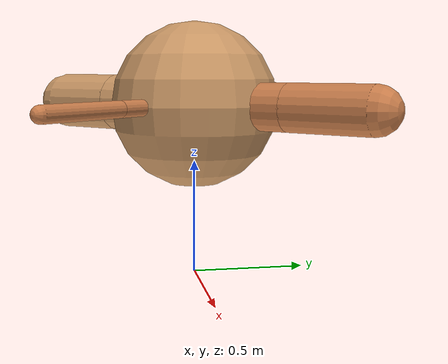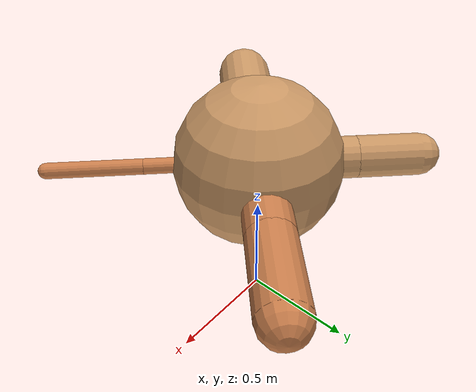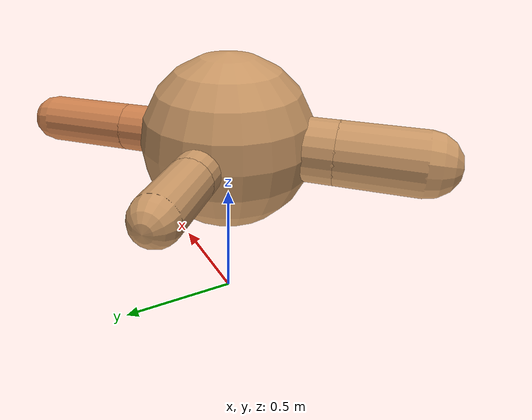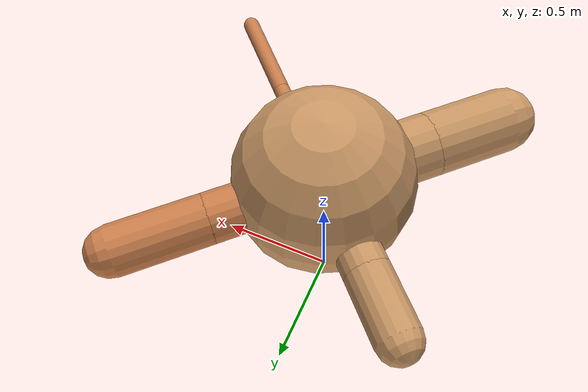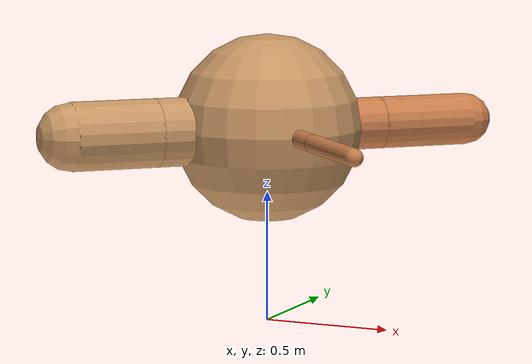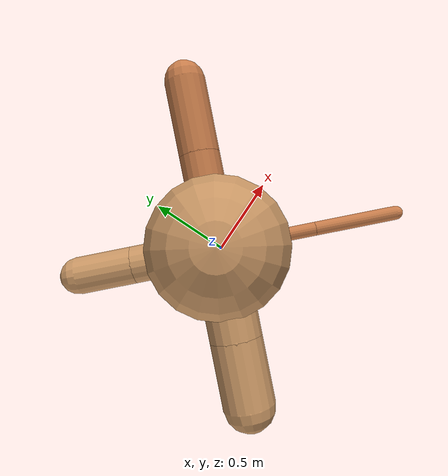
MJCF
<?xml version="1.0" ?>
<mujoco model="ant">

	<compiler angle="degree" coordinate="local" inertiafromgeom="true"/>

	<option integrator="RK4" timestep="0.01"/>

	<custom>

		<numeric data="0.0 0.0 0.55 1.0 0.0 0.0 0.0 0.0 1.0 0.0 -1.0 0.0 -1.0 0.0 1.0" name="init_qpos"/>

	</custom>

	<default>

		<joint armature="1" damping="1" limited="true"/>

		<geom conaffinity="0" condim="3" density="5.0" friction="1.5 0.1 0.1" margin="0.01" rgba="0.8 0.6 0.4 1"/>

	</default>

	<worldbody>

		<body name="torso" pos="0 0 0.75">

			<geom name="torso_geom" pos="0 0 0" size="0.3635284532084282" type="sphere"/>

			<!--joint armature="0" damping="0" limited="false" margin="0.01" name="root" pos="0 0 0" type="free"/-->

			<body name="front_left_leg" pos="0 0 0">

				<geom fromto="0 0 0 0.2 0.2 0" name="aux_1_geom" size="0.1006000839264975" type="capsule" rgba=".8 .5 .3 1"/>

				<body name="aux_1" pos="0.2 0.2 0">

					<joint axis="0 0 1" name="hip_1" pos="0.0 0.0 0.0" range="-40 40" type="hinge"/>

					<geom fromto="0 0 0 0.12882577974531567 0.12882577974531567 0" name="left_leg_geom" size="0.1006000839264975" type="capsule" rgba=".8 .5 .3 1"/>

					<body pos="0.12882577974531567 0.12882577974531567 0" name="front_left_foot">

						<joint axis="-1 1 0" name="ankle_1" pos="0.0 0.0 0.0" range="30 100" type="hinge"/>

						<geom fromto="0 0 0 0.25765155949063134 0.25765155949063134 0" name="left_ankle_geom" size="0.1006000839264975" type="capsule" rgba=".8 .5 .3 1"/>

					</body>

				</body>

			</body>

			<body name="front_right_leg" pos="0 0 0">

				<geom fromto="0 0 0 -0.2 0.2 0" name="aux_2_geom" size="0.09127972552290803" type="capsule"/>

				<body name="aux_2" pos="-0.2 0.2 0">

					<joint axis="0 0 1" name="hip_2" pos="0.0 0.0 0.0" range="-40 40" type="hinge"/>

					<geom fromto="0 0 0 -0.09552163407925643 0.09552163407925643 0" name="right_leg_geom" size="0.09127972552290803" type="capsule"/>

					<body pos="-0.09552163407925643 0.09552163407925643 0" name="front_right_foot">

						<joint axis="1 1 0" name="ankle_2" pos="0.0 0.0 0.0" range="-100 -30" type="hinge"/>

						<geom fromto="0 0 0 -0.19104326815851286 0.19104326815851286 0" name="right_ankle_geom" size="0.09127972552290803" type="capsule"/>

					</body>

				</body>

			</body>

			<body name="left_back_leg" pos="0 0 0">

				<geom fromto="0 0 0 -0.2 -0.2 0" name="aux_3_geom" size="0.1311488177405849" type="capsule"/>

				<body name="aux_3" pos="-0.2 -0.2 0">

					<joint axis="0 0 1" name="hip_3" pos="0.0 0.0 0.0" range="-40 40" type="hinge"/>

					<geom fromto="0 0 0 -0.11798899165152532 -0.11798899165152532 0" name="back_leg_geom" size="0.1311488177405849" type="capsule"/>

					<body pos="-0.11798899165152532 -0.11798899165152532 0" name="left_back_foot">

						<joint axis="-1 1 0" name="ankle_3" pos="0.0 0.0 0.0" range="-100 -30" type="hinge"/>

						<geom fromto="0 0 0 -0.23597798330305064 -0.23597798330305064 0" name="third_ankle_geom" size="0.1311488177405849" type="capsule"/>

					</body>

				</body>

			</body>

			<body name="right_back_leg" pos="0 0 0">

				<geom fromto="0 0 0 0.2 -0.2 0" name="aux_4_geom" size="0.03403194799837265" type="capsule" rgba=".8 .5 .3 1"/>

				<body name="aux_4" pos="0.2 -0.2 0">

					<joint axis="0 0 1" name="hip_4" pos="0.0 0.0 0.0" range="-40 40" type="hinge"/>

					<geom fromto="0 0 0 0.14164262933698618 -0.14164262933698618 0" name="rightback_leg_geom" size="0.03403194799837265" type="capsule" rgba=".8 .5 .3 1"/>

					<body pos="0.14164262933698618 -0.14164262933698618 0" name="right_back_foot">

						<joint axis="1 1 0" name="ankle_4" pos="0.0 0.0 0.0" range="30 100" type="hinge"/>

						<geom fromto="0 0 0 0.28328525867397236 -0.28328525867397236 0" name="fourth_ankle_geom" size="0.03403194799837265" type="capsule" rgba=".8 .5 .3 1"/>

					</body>

				</body>

			</body>

		</body>

	</worldbody>

	<actuator>

		<motor ctrllimited="true" ctrlrange="-1.0 1.0" joint="hip_4" gear="150"/>

		<motor ctrllimited="true" ctrlrange="-1.0 1.0" joint="ankle_4" gear="150"/>

		<motor ctrllimited="true" ctrlrange="-1.0 1.0" joint="hip_1" gear="150"/>

		<motor ctrllimited="true" ctrlrange="-1.0 1.0" joint="ankle_1" gear="150"/>

		<motor ctrllimited="true" ctrlrange="-1.0 1.0" joint="hip_2" gear="150"/>

		<motor ctrllimited="true" ctrlrange="-1.0 1.0" joint="ankle_2" gear="150"/>

		<motor ctrllimited="true" ctrlrange="-1.0 1.0" joint="hip_3" gear="150"/>

		<motor ctrllimited="true" ctrlrange="-1.0 1.0" joint="ankle_3" gear="150"/>

	</actuator>

</mujoco>
